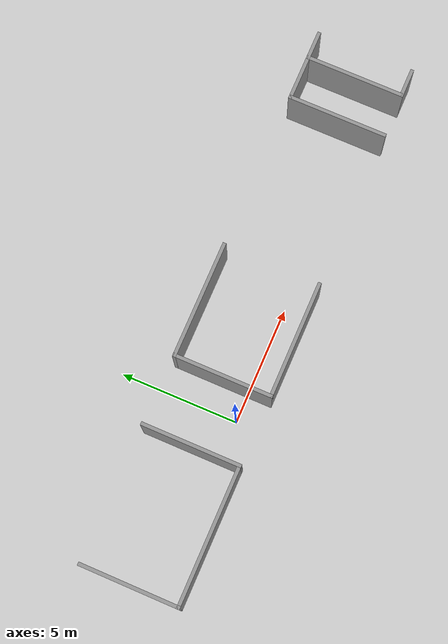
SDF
<?xml version='1.0'?>
<sdf version='1.7'>
  <model name='rooms'>
    <pose>4.05386 1.08111 0 0 -0 0</pose>
    <link name='Wall_10'>
      <collision name='Wall_10_Collision'>
        <geometry>
          <box>
            <size>4.25 0.15 2.5</size>
          </box>
        </geometry>
        <pose>0 0 1.25 0 -0 0</pose>
      </collision>
      <visual name='Wall_10_Visual'>
        <pose>0 0 1.25 0 -0 0</pose>
        <geometry>
          <box>
            <size>4.25 0.15 2.5</size>
          </box>
        </geometry>
        <material>
          <script>
            <uri>file://media/materials/scripts/gazebo.material</uri>
            <name>Gazebo/Grey</name>
          </script>
          <ambient>1 1 1 1</ambient>
        </material>
        <meta>
          <layer>0</layer>
        </meta>
      </visual>
      <pose>-11.675 0.031 0 0 -0 1.5708</pose>
    </link>
    <link name='Wall_12'>
      <collision name='Wall_12_Collision'>
        <geometry>
          <box>
            <size>5 0.15 2.5</size>
          </box>
        </geometry>
        <pose>0 0 1.25 0 -0 0</pose>
      </collision>
      <visual name='Wall_12_Visual'>
        <pose>0 0 1.25 0 -0 0</pose>
        <geometry>
          <box>
            <size>5 0.15 2.5</size>
          </box>
        </geometry>
        <material>
          <script>
            <uri>file://media/materials/scripts/gazebo.material</uri>
            <name>Gazebo/Grey</name>
          </script>
          <ambient>1 1 1 1</ambient>
        </material>
        <meta>
          <layer>0</layer>
        </meta>
      </visual>
      <pose>-0.434 2.037 0 0 -0 0</pose>
    </link>
    <link name='Wall_15'>
      <collision name='Wall_15_Collision'>
        <geometry>
          <box>
            <size>4.25 0.15 2.5</size>
          </box>
        </geometry>
        <pose>0 0 1.25 0 -0 0</pose>
      </collision>
      <visual name='Wall_15_Visual'>
        <pose>0 0 1.25 0 -0 0</pose>
        <geometry>
          <box>
            <size>4.25 0.15 2.5</size>
          </box>
        </geometry>
        <material>
          <script>
            <uri>file://media/materials/scripts/gazebo.material</uri>
            <name>Gazebo/Grey</name>
          </script>
          <ambient>1 1 1 1</ambient>
        </material>
        <meta>
          <layer>0</layer>
        </meta>
      </visual>
      <pose>-2.859 -0.013 0 0 -0 -1.5708</pose>
    </link>
    <link name='Wall_16'>
      <collision name='Wall_16_Collision'>
        <geometry>
          <box>
            <size>5 0.15 2.5</size>
          </box>
        </geometry>
        <pose>0 0 1.25 0 -0 0</pose>
      </collision>
      <visual name='Wall_16_Visual'>
        <pose>0 0 1.25 0 -0 0</pose>
        <geometry>
          <box>
            <size>5 0.15 2.5</size>
          </box>
        </geometry>
        <material>
          <script>
            <uri>file://media/materials/scripts/gazebo.material</uri>
            <name>Gazebo/Grey</name>
          </script>
          <ambient>1 1 1 1</ambient>
        </material>
        <meta>
          <layer>0</layer>
        </meta>
      </visual>
      <pose>-0.434 -2.063 0 0 -0 0</pose>
    </link>
    <link name='Wall_18'>
      <collision name='Wall_18_Collision'>
        <geometry>
          <box>
            <size>4.25 0.15 2.5</size>
          </box>
        </geometry>
        <pose>0 0 1.25 0 -0 0</pose>
      </collision>
      <visual name='Wall_18_Visual'>
        <pose>0 0 1.25 0 -0 0</pose>
        <geometry>
          <box>
            <size>4.25 0.15 2.5</size>
          </box>
        </geometry>
        <material>
          <script>
            <uri>file://media/materials/scripts/gazebo.material</uri>
            <name>Gazebo/Grey</name>
          </script>
          <ambient>1 1 1 1</ambient>
        </material>
        <meta>
          <layer>0</layer>
        </meta>
      </visual>
      <pose>8.725 -0.031 0 0 -0 1.5708</pose>
    </link>
    <link name='Wall_20'>
      <collision name='Wall_20_Collision'>
        <geometry>
          <box>
            <size>2 0.15 2.5</size>
          </box>
        </geometry>
        <pose>0 0 1.25 0 -0 0</pose>
      </collision>
      <visual name='Wall_20_Visual'>
        <pose>0 0 1.25 0 -0 0</pose>
        <geometry>
          <box>
            <size>2 0.15 2.5</size>
          </box>
        </geometry>
        <material>
          <script>
            <uri>file://media/materials/scripts/gazebo.material</uri>
            <name>Gazebo/Grey</name>
          </script>
          <ambient>1 1 1 1</ambient>
        </material>
        <meta>
          <layer>0</layer>
        </meta>
      </visual>
      <pose>9.65 2.019 0 0 -0 0</pose>
    </link>
    <link name='Wall_22'>
      <collision name='Wall_22_Collision'>
        <geometry>
          <box>
            <size>4.25 0.15 2.5</size>
          </box>
        </geometry>
        <pose>0 0 1.25 0 -0 0</pose>
      </collision>
      <visual name='Wall_22_Visual'>
        <pose>0 0 1.25 0 -0 0</pose>
        <geometry>
          <box>
            <size>4.25 0.15 2.5</size>
          </box>
        </geometry>
        <material>
          <script>
            <uri>file://media/materials/scripts/gazebo.material</uri>
            <name>Gazebo/Grey</name>
          </script>
          <ambient>1 1 1 1</ambient>
        </material>
        <meta>
          <layer>0</layer>
        </meta>
      </visual>
      <pose>10.575 -0.031 0 0 -0 -1.5708</pose>
    </link>
    <link name='Wall_23'>
      <collision name='Wall_23_Collision'>
        <geometry>
          <box>
            <size>1.25 0.15 2.5</size>
          </box>
        </geometry>
        <pose>0 0 1.25 0 -0 0</pose>
      </collision>
      <visual name='Wall_23_Visual'>
        <pose>0 0 1.25 0 -0 0</pose>
        <geometry>
          <box>
            <size>1.25 0.15 2.5</size>
          </box>
        </geometry>
        <material>
          <script>
            <uri>file://media/materials/scripts/gazebo.material</uri>
            <name>Gazebo/Grey</name>
          </script>
          <ambient>1 1 1 1</ambient>
        </material>
        <meta>
          <layer>0</layer>
        </meta>
      </visual>
      <pose>11.125 -2.081 0 0 -0 0</pose>
    </link>
    <link name='Wall_25'>
      <collision name='Wall_25_Collision'>
        <geometry>
          <box>
            <size>1.25 0.15 2.5</size>
          </box>
        </geometry>
        <pose>0 0 1.25 0 -0 0</pose>
      </collision>
      <visual name='Wall_25_Visual'>
        <pose>0 0 1.25 0 -0 0</pose>
        <geometry>
          <box>
            <size>1.25 0.15 2.5</size>
          </box>
        </geometry>
        <material>
          <script>
            <uri>file://media/materials/scripts/gazebo.material</uri>
            <name>Gazebo/Grey</name>
          </script>
          <ambient>1 1 1 1</ambient>
        </material>
        <meta>
          <layer>0</layer>
        </meta>
      </visual>
      <pose>11.125 2.019 0 0 -0 0</pose>
    </link>
    <link name='Wall_7'>
      <collision name='Wall_7_Collision'>
        <geometry>
          <box>
            <size>6 0.15 2.5</size>
          </box>
        </geometry>
        <pose>0 0 1.25 0 -0 0</pose>
      </collision>
      <visual name='Wall_7_Visual'>
        <pose>0 0 1.25 0 -0 0</pose>
        <geometry>
          <box>
            <size>6 0.15 2.5</size>
          </box>
        </geometry>
        <material>
          <script>
            <uri>file://media/materials/scripts/gazebo.material</uri>
            <name>Gazebo/Grey</name>
          </script>
          <ambient>1 1 1 1</ambient>
        </material>
        <meta>
          <layer>0</layer>
        </meta>
      </visual>
      <pose>-8.75 -2.019 0 0 -0 0</pose>
    </link>
    <link name='Wall_8'>
      <collision name='Wall_8_Collision'>
        <geometry>
          <box>
            <size>4.25 0.15 2.5</size>
          </box>
        </geometry>
        <pose>0 0 1.25 0 -0 0</pose>
      </collision>
      <visual name='Wall_8_Visual'>
        <pose>0 0 1.25 0 -0 0</pose>
        <geometry>
          <box>
            <size>4.25 0.15 2.5</size>
          </box>
        </geometry>
        <material>
          <script>
            <uri>file://media/materials/scripts/gazebo.material</uri>
            <name>Gazebo/Grey</name>
          </script>
          <ambient>1 1 1 1</ambient>
        </material>
        <meta>
          <layer>0</layer>
        </meta>
      </visual>
      <pose>-5.825 0.031 0 0 -0 1.5708</pose>
    </link>
    <static>1</static>
  </model>
</sdf>
